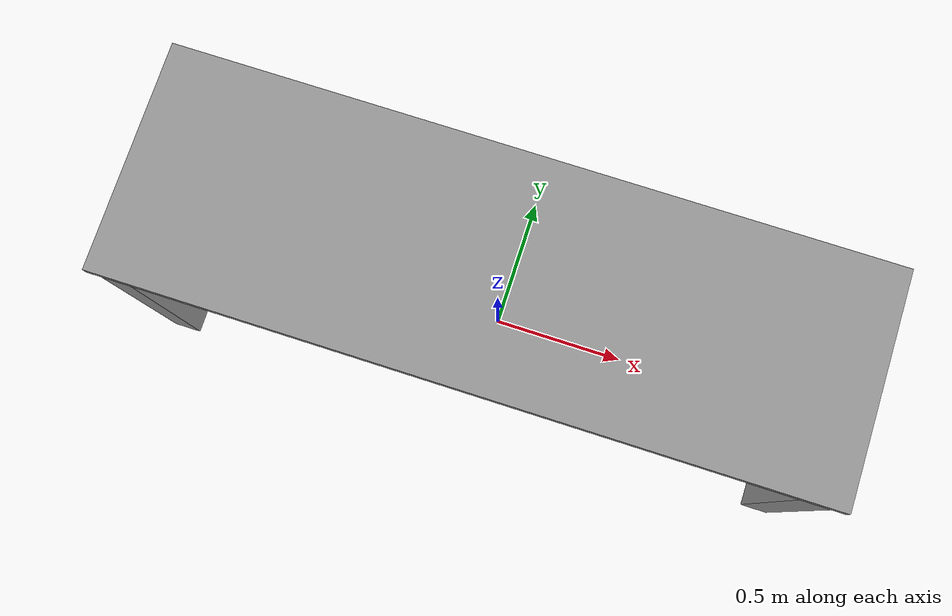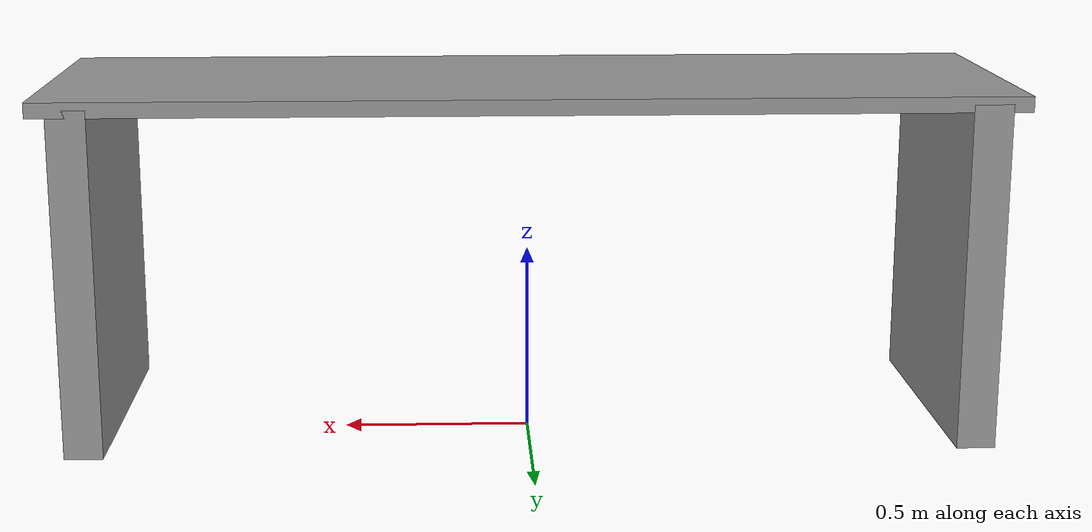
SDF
<?xml version='1.0'?>
<sdf version='1.6'>
  <model name='table_clone'>
    <link name='link'>
      <pose frame=''>0 0 0 0 -0 0</pose>
      <inertial>
        <inertia>
          <ixx>1</ixx>
          <ixy>0</ixy>
          <ixz>0</ixz>
          <iyy>1</iyy>
          <iyz>0</iyz>
          <izz>1</izz>
        </inertia>
        <mass>10</mass>
        <pose frame=''>0 0 0 0 -0 0</pose>
      </inertial>
      <self_collide>0</self_collide>
      <kinematic>0</kinematic>
      <gravity>1</gravity>
      <visual name='visual1'>
        <pose frame=''>0 0 0.95 0 -0 0</pose>
        <geometry>
          <box>
            <size>2.5 0.8 0.04</size>
          </box>
        </geometry>
        <material>
          <script>
            <uri>file://media/materials/scripts/gazebo.material</uri>
            <name>Gazebo/Grey</name>
          </script>
          <ambient>1 1 1 1</ambient>
          <diffuse>1 1 1 1</diffuse>
          <specular>0.2 0.2 0.2 1</specular>
          <emissive>0 0 0 1</emissive>
          <shader type='vertex'>
            <normal_map>__default__</normal_map>
          </shader>
        </material>
        <cast_shadows>1</cast_shadows>
        <transparency>0</transparency>
      </visual>
      <visual name='ModelPreview_1::link::visual_12'>
        <pose frame=''>1.15 0 0.5 0 -0 0</pose>
        <geometry>
          <box>
            <size>0.1 0.8 0.9</size>
          </box>
        </geometry>
        <material>
          <script>
            <uri>file://media/materials/scripts/gazebo.material</uri>
            <name>Gazebo/Grey</name>
          </script>
          <ambient>0.3 0.3 0.3 1</ambient>
          <diffuse>0.7 0.7 0.7 1</diffuse>
          <specular>0.01 0.01 0.01 1</specular>
          <emissive>0 0 0 1</emissive>
          <shader type='vertex'>
            <normal_map>__default__</normal_map>
          </shader>
        </material>
        <cast_shadows>1</cast_shadows>
        <transparency>0</transparency>
      </visual>
      <visual name='back_right_leg'>
        <pose frame=''>-1.15 0 0.5 0 -0 0</pose>
        <geometry>
          <box>
            <size>0.1 0.8 0.9</size>
          </box>
        </geometry>
        <material>
          <script>
            <uri>file://media/materials/scripts/gazebo.material</uri>
            <name>Gazebo/Grey</name>
          </script>
          <ambient>0.3 0.3 0.3 1</ambient>
          <diffuse>0.7 0.7 0.7 1</diffuse>
          <specular>0.01 0.01 0.01 1</specular>
          <emissive>0 0 0 1</emissive>
          <shader type='vertex'>
            <normal_map>__default__</normal_map>
          </shader>
        </material>
        <cast_shadows>1</cast_shadows>
        <transparency>0</transparency>
      </visual>
      <collision name='collision_7'>
        <laser_retro>0</laser_retro>
        <max_contacts>10</max_contacts>
        <pose frame=''>1.15 0 0.5 0 -0 0</pose>
        <geometry>
          <box>
            <size>0.1 0.8 0.9</size>
          </box>
        </geometry>
        <surface>
          <friction>
            <ode>
              <mu>1</mu>
              <mu2>1</mu2>
              <fdir1>0 0 0</fdir1>
              <slip1>0</slip1>
              <slip2>0</slip2>
            </ode>
            <torsional>
              <coefficient>1</coefficient>
              <patch_radius>0</patch_radius>
              <surface_radius>0</surface_radius>
              <use_patch_radius>1</use_patch_radius>
              <ode>
                <slip>0</slip>
              </ode>
            </torsional>
          </friction>
          <bounce>
            <restitution_coefficient>0</restitution_coefficient>
            <threshold>1e+06</threshold>
          </bounce>
          <contact>
            <collide_without_contact>0</collide_without_contact>
            <collide_without_contact_bitmask>1</collide_without_contact_bitmask>
            <collide_bitmask>1</collide_bitmask>
            <ode>
              <soft_cfm>0</soft_cfm>
              <soft_erp>0.2</soft_erp>
              <kp>1e+13</kp>
              <kd>1</kd>
              <max_vel>0.01</max_vel>
              <min_depth>0</min_depth>
            </ode>
            <bullet>
              <split_impulse>1</split_impulse>
              <split_impulse_penetration_threshold>-0.01</split_impulse_penetration_threshold>
              <soft_cfm>0</soft_cfm>
              <soft_erp>0.2</soft_erp>
              <kp>1e+13</kp>
              <kd>1</kd>
            </bullet>
          </contact>
        </surface>
      </collision>
      <collision name='surface'>
        <laser_retro>0</laser_retro>
        <max_contacts>10</max_contacts>
        <pose frame=''>0 0 0.95 0 -0 0</pose>
        <geometry>
          <box>
            <size>2.5 0.8 0.03</size>
          </box>
        </geometry>
        <surface>
          <friction>
            <ode>
              <mu>0.6</mu>
              <mu2>0.6</mu2>
              <fdir1>0 0 0</fdir1>
              <slip1>0</slip1>
              <slip2>0</slip2>
            </ode>
            <torsional>
              <coefficient>1</coefficient>
              <patch_radius>0</patch_radius>
              <surface_radius>0</surface_radius>
              <use_patch_radius>1</use_patch_radius>
              <ode>
                <slip>0</slip>
              </ode>
            </torsional>
          </friction>
          <bounce>
            <restitution_coefficient>0</restitution_coefficient>
            <threshold>1e+06</threshold>
          </bounce>
          <contact>
            <collide_without_contact>0</collide_without_contact>
            <collide_without_contact_bitmask>1</collide_without_contact_bitmask>
            <collide_bitmask>1</collide_bitmask>
            <ode>
              <soft_cfm>0</soft_cfm>
              <soft_erp>0.2</soft_erp>
              <kp>1e+13</kp>
              <kd>1</kd>
              <max_vel>0.01</max_vel>
              <min_depth>0</min_depth>
            </ode>
            <bullet>
              <split_impulse>1</split_impulse>
              <split_impulse_penetration_threshold>-0.01</split_impulse_penetration_threshold>
              <soft_cfm>0</soft_cfm>
              <soft_erp>0.2</soft_erp>
              <kp>1e+13</kp>
              <kd>1</kd>
            </bullet>
          </contact>
        </surface>
      </collision>
      <collision name='collision_5'>
        <laser_retro>0</laser_retro>
        <max_contacts>10</max_contacts>
        <pose frame=''>-1.15 0 0.5 0 -0 0</pose>
        <geometry>
          <box>
            <size>0.1 0.8 0.9</size>
          </box>
        </geometry>
        <surface>
          <friction>
            <ode>
              <mu>1</mu>
              <mu2>1</mu2>
              <fdir1>0 0 0</fdir1>
              <slip1>0</slip1>
              <slip2>0</slip2>
            </ode>
            <torsional>
              <coefficient>1</coefficient>
              <patch_radius>0</patch_radius>
              <surface_radius>0</surface_radius>
              <use_patch_radius>1</use_patch_radius>
              <ode>
                <slip>0</slip>
              </ode>
            </torsional>
          </friction>
          <bounce>
            <restitution_coefficient>0</restitution_coefficient>
            <threshold>1e+06</threshold>
          </bounce>
          <contact>
            <collide_without_contact>0</collide_without_contact>
            <collide_without_contact_bitmask>1</collide_without_contact_bitmask>
            <collide_bitmask>1</collide_bitmask>
            <ode>
              <soft_cfm>0</soft_cfm>
              <soft_erp>0.2</soft_erp>
              <kp>1e+13</kp>
              <kd>1</kd>
              <max_vel>0.01</max_vel>
              <min_depth>0</min_depth>
            </ode>
            <bullet>
              <split_impulse>1</split_impulse>
              <split_impulse_penetration_threshold>-0.01</split_impulse_penetration_threshold>
              <soft_cfm>0</soft_cfm>
              <soft_erp>0.2</soft_erp>
              <kp>1e+13</kp>
              <kd>1</kd>
            </bullet>
          </contact>
        </surface>
      </collision>
    </link>
    <static>0</static>
    <allow_auto_disable>1</allow_auto_disable>
  </model>
</sdf>
